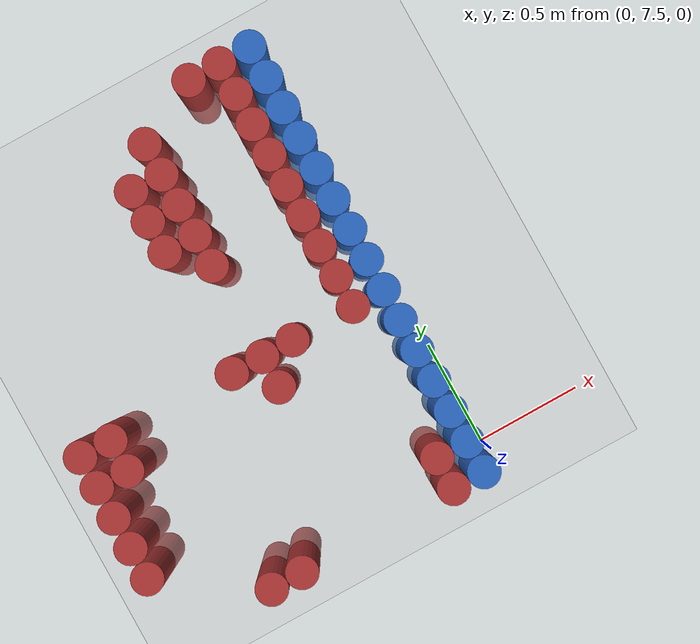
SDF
<sdf version="1.6">
 <world name="default">
  <model name="ground_plane">
   <static>1</static>
   <link name="link">
    <collision name="collision">
     <geometry><plane><normal>0 0 1</normal><size>100 100</size></plane></geometry>
     <surface><friction><ode><mu>100</mu><mu2>50</mu2></ode></friction></surface>
    </collision>
    <visual name="visual">
     <cast_shadows>0</cast_shadows>
     <geometry><plane><normal>0 0 1</normal><size>100 100</size></plane></geometry>
     <material>
      <script><uri>file://media/materials/scripts/gazebo.material</uri><name>Gazebo/Grey</name></script>
     </material>
    </visual>
   </link>
  </model>
  <model name="unit_cylinder_219">
   <static>1</static>
   <pose>-1.575000 7.725000 0.000000 0.000000 0.000000 0.000000</pose>
   <link name="link">
    <inertial>
     <mass>1</mass>
     <inertia><ixx>0.145833</ixx><ixy>0</ixy><ixz>0</ixz><iyy>0.145833</iyy><iyz>0</iyz><izz>0.125</izz></inertia>
    </inertial>
    <collision name="collision">
     <geometry><cylinder><radius>0.075000</radius><length>1</length></cylinder></geometry>
    </collision>
    <visual name="visual">
     <geometry><cylinder><radius>0.075000</radius><length>1</length></cylinder></geometry>
     <material>
      <ambient>0.648000 0.192000 0.192000 1</ambient>
      <diffuse>0.648000 0.192000 0.192000 1</diffuse>
     </material>
     <material>
      <script><name>Gazebo/Grey</name><uri>file://media/materials/scripts/gazebo.material</uri></script>
     </material>
    </visual>
   </link>
  </model>
  <model name="unit_cylinder_220">
   <static>1</static>
   <pose>-1.575000 7.875000 0.000000 0.000000 0.000000 0.000000</pose>
   <link name="link">
    <inertial>
     <mass>1</mass>
     <inertia><ixx>0.145833</ixx><ixy>0</ixy><ixz>0</ixz><iyy>0.145833</iyy><iyz>0</iyz><izz>0.125</izz></inertia>
    </inertial>
    <collision name="collision">
     <geometry><cylinder><radius>0.075000</radius><length>1</length></cylinder></geometry>
    </collision>
    <visual name="visual">
     <geometry><cylinder><radius>0.075000</radius><length>1</length></cylinder></geometry>
     <material>
      <ambient>0.648000 0.192000 0.192000 1</ambient>
      <diffuse>0.648000 0.192000 0.192000 1</diffuse>
     </material>
     <material>
      <script><name>Gazebo/Grey</name><uri>file://media/materials/scripts/gazebo.material</uri></script>
     </material>
    </visual>
   </link>
  </model>
  <model name="unit_cylinder_221">
   <static>1</static>
   <pose>-1.575000 8.025000 0.000000 0.000000 0.000000 0.000000</pose>
   <link name="link">
    <inertial>
     <mass>1</mass>
     <inertia><ixx>0.145833</ixx><ixy>0</ixy><ixz>0</ixz><iyy>0.145833</iyy><iyz>0</iyz><izz>0.125</izz></inertia>
    </inertial>
    <collision name="collision">
     <geometry><cylinder><radius>0.075000</radius><length>1</length></cylinder></geometry>
    </collision>
    <visual name="visual">
     <geometry><cylinder><radius>0.075000</radius><length>1</length></cylinder></geometry>
     <material>
      <ambient>0.648000 0.192000 0.192000 1</ambient>
      <diffuse>0.648000 0.192000 0.192000 1</diffuse>
     </material>
     <material>
      <script><name>Gazebo/Grey</name><uri>file://media/materials/scripts/gazebo.material</uri></script>
     </material>
    </visual>
   </link>
  </model>
  <model name="unit_cylinder_222">
   <static>1</static>
   <pose>-1.575000 8.175000 0.000000 0.000000 0.000000 0.000000</pose>
   <link name="link">
    <inertial>
     <mass>1</mass>
     <inertia><ixx>0.145833</ixx><ixy>0</ixy><ixz>0</ixz><iyy>0.145833</iyy><iyz>0</iyz><izz>0.125</izz></inertia>
    </inertial>
    <collision name="collision">
     <geometry><cylinder><radius>0.075000</radius><length>1</length></cylinder></geometry>
    </collision>
    <visual name="visual">
     <geometry><cylinder><radius>0.075000</radius><length>1</length></cylinder></geometry>
     <material>
      <ambient>0.648000 0.192000 0.192000 1</ambient>
      <diffuse>0.648000 0.192000 0.192000 1</diffuse>
     </material>
     <material>
      <script><name>Gazebo/Grey</name><uri>file://media/materials/scripts/gazebo.material</uri></script>
     </material>
    </visual>
   </link>
  </model>
  <model name="unit_cylinder_223">
   <static>1</static>
   <pose>-1.575000 8.325000 0.000000 0.000000 0.000000 0.000000</pose>
   <link name="link">
    <inertial>
     <mass>1</mass>
     <inertia><ixx>0.145833</ixx><ixy>0</ixy><ixz>0</ixz><iyy>0.145833</iyy><iyz>0</iyz><izz>0.125</izz></inertia>
    </inertial>
    <collision name="collision">
     <geometry><cylinder><radius>0.075000</radius><length>1</length></cylinder></geometry>
    </collision>
    <visual name="visual">
     <geometry><cylinder><radius>0.075000</radius><length>1</length></cylinder></geometry>
     <material>
      <ambient>0.648000 0.192000 0.192000 1</ambient>
      <diffuse>0.648000 0.192000 0.192000 1</diffuse>
     </material>
     <material>
      <script><name>Gazebo/Grey</name><uri>file://media/materials/scripts/gazebo.material</uri></script>
     </material>
    </visual>
   </link>
  </model>
  <model name="unit_cylinder_228">
   <static>1</static>
   <pose>-1.425000 8.175000 0.000000 0.000000 0.000000 0.000000</pose>
   <link name="link">
    <inertial>
     <mass>1</mass>
     <inertia><ixx>0.145833</ixx><ixy>0</ixy><ixz>0</ixz><iyy>0.145833</iyy><iyz>0</iyz><izz>0.125</izz></inertia>
    </inertial>
    <collision name="collision">
     <geometry><cylinder><radius>0.075000</radius><length>1</length></cylinder></geometry>
    </collision>
    <visual name="visual">
     <geometry><cylinder><radius>0.075000</radius><length>1</length></cylinder></geometry>
     <material>
      <ambient>0.648000 0.192000 0.192000 1</ambient>
      <diffuse>0.648000 0.192000 0.192000 1</diffuse>
     </material>
     <material>
      <script><name>Gazebo/Grey</name><uri>file://media/materials/scripts/gazebo.material</uri></script>
     </material>
    </visual>
   </link>
  </model>
  <model name="unit_cylinder_229">
   <static>1</static>
   <pose>-1.425000 8.325000 0.000000 0.000000 0.000000 0.000000</pose>
   <link name="link">
    <inertial>
     <mass>1</mass>
     <inertia><ixx>0.145833</ixx><ixy>0</ixy><ixz>0</ixz><iyy>0.145833</iyy><iyz>0</iyz><izz>0.125</izz></inertia>
    </inertial>
    <collision name="collision">
     <geometry><cylinder><radius>0.075000</radius><length>1</length></cylinder></geometry>
    </collision>
    <visual name="visual">
     <geometry><cylinder><radius>0.075000</radius><length>1</length></cylinder></geometry>
     <material>
      <ambient>0.648000 0.192000 0.192000 1</ambient>
      <diffuse>0.648000 0.192000 0.192000 1</diffuse>
     </material>
     <material>
      <script><name>Gazebo/Grey</name><uri>file://media/materials/scripts/gazebo.material</uri></script>
     </material>
    </visual>
   </link>
  </model>
  <model name="unit_cylinder_241">
   <static>1</static>
   <pose>-1.125000 7.425000 0.000000 0.000000 0.000000 0.000000</pose>
   <link name="link">
    <inertial>
     <mass>1</mass>
     <inertia><ixx>0.145833</ixx><ixy>0</ixy><ixz>0</ixz><iyy>0.145833</iyy><iyz>0</iyz><izz>0.125</izz></inertia>
    </inertial>
    <collision name="collision">
     <geometry><cylinder><radius>0.075000</radius><length>1</length></cylinder></geometry>
    </collision>
    <visual name="visual">
     <geometry><cylinder><radius>0.075000</radius><length>1</length></cylinder></geometry>
     <material>
      <ambient>0.648000 0.192000 0.192000 1</ambient>
      <diffuse>0.648000 0.192000 0.192000 1</diffuse>
     </material>
     <material>
      <script><name>Gazebo/Grey</name><uri>file://media/materials/scripts/gazebo.material</uri></script>
     </material>
    </visual>
   </link>
  </model>
  <model name="unit_cylinder_252">
   <static>1</static>
   <pose>-0.975000 7.425000 0.000000 0.000000 0.000000 0.000000</pose>
   <link name="link">
    <inertial>
     <mass>1</mass>
     <inertia><ixx>0.145833</ixx><ixy>0</ixy><ixz>0</ixz><iyy>0.145833</iyy><iyz>0</iyz><izz>0.125</izz></inertia>
    </inertial>
    <collision name="collision">
     <geometry><cylinder><radius>0.075000</radius><length>1</length></cylinder></geometry>
    </collision>
    <visual name="visual">
     <geometry><cylinder><radius>0.075000</radius><length>1</length></cylinder></geometry>
     <material>
      <ambient>0.648000 0.192000 0.192000 1</ambient>
      <diffuse>0.648000 0.192000 0.192000 1</diffuse>
     </material>
     <material>
      <script><name>Gazebo/Grey</name><uri>file://media/materials/scripts/gazebo.material</uri></script>
     </material>
    </visual>
   </link>
  </model>
  <model name="unit_cylinder_258">
   <static>1</static>
   <pose>-0.825000 8.325000 0.000000 0.000000 0.000000 0.000000</pose>
   <link name="link">
    <inertial>
     <mass>1</mass>
     <inertia><ixx>0.145833</ixx><ixy>0</ixy><ixz>0</ixz><iyy>0.145833</iyy><iyz>0</iyz><izz>0.125</izz></inertia>
    </inertial>
    <collision name="collision">
     <geometry><cylinder><radius>0.075000</radius><length>1</length></cylinder></geometry>
    </collision>
    <visual name="visual">
     <geometry><cylinder><radius>0.075000</radius><length>1</length></cylinder></geometry>
     <material>
      <ambient>0.648000 0.192000 0.192000 1</ambient>
      <diffuse>0.648000 0.192000 0.192000 1</diffuse>
     </material>
     <material>
      <script><name>Gazebo/Grey</name><uri>file://media/materials/scripts/gazebo.material</uri></script>
     </material>
    </visual>
   </link>
  </model>
  <model name="unit_cylinder_259">
   <static>1</static>
   <pose>-0.825000 8.925000 0.000000 0.000000 0.000000 0.000000</pose>
   <link name="link">
    <inertial>
     <mass>1</mass>
     <inertia><ixx>0.145833</ixx><ixy>0</ixy><ixz>0</ixz><iyy>0.145833</iyy><iyz>0</iyz><izz>0.125</izz></inertia>
    </inertial>
    <collision name="collision">
     <geometry><cylinder><radius>0.075000</radius><length>1</length></cylinder></geometry>
    </collision>
    <visual name="visual">
     <geometry><cylinder><radius>0.075000</radius><length>1</length></cylinder></geometry>
     <material>
      <ambient>0.648000 0.192000 0.192000 1</ambient>
      <diffuse>0.648000 0.192000 0.192000 1</diffuse>
     </material>
     <material>
      <script><name>Gazebo/Grey</name><uri>file://media/materials/scripts/gazebo.material</uri></script>
     </material>
    </visual>
   </link>
  </model>
  <model name="unit_cylinder_260">
   <static>1</static>
   <pose>-0.825000 9.075000 0.000000 0.000000 0.000000 0.000000</pose>
   <link name="link">
    <inertial>
     <mass>1</mass>
     <inertia><ixx>0.145833</ixx><ixy>0</ixy><ixz>0</ixz><iyy>0.145833</iyy><iyz>0</iyz><izz>0.125</izz></inertia>
    </inertial>
    <collision name="collision">
     <geometry><cylinder><radius>0.075000</radius><length>1</length></cylinder></geometry>
    </collision>
    <visual name="visual">
     <geometry><cylinder><radius>0.075000</radius><length>1</length></cylinder></geometry>
     <material>
      <ambient>0.648000 0.192000 0.192000 1</ambient>
      <diffuse>0.648000 0.192000 0.192000 1</diffuse>
     </material>
     <material>
      <script><name>Gazebo/Grey</name><uri>file://media/materials/scripts/gazebo.material</uri></script>
     </material>
    </visual>
   </link>
  </model>
  <model name="unit_cylinder_261">
   <static>1</static>
   <pose>-0.825000 9.225000 0.000000 0.000000 0.000000 0.000000</pose>
   <link name="link">
    <inertial>
     <mass>1</mass>
     <inertia><ixx>0.145833</ixx><ixy>0</ixy><ixz>0</ixz><iyy>0.145833</iyy><iyz>0</iyz><izz>0.125</izz></inertia>
    </inertial>
    <collision name="collision">
     <geometry><cylinder><radius>0.075000</radius><length>1</length></cylinder></geometry>
    </collision>
    <visual name="visual">
     <geometry><cylinder><radius>0.075000</radius><length>1</length></cylinder></geometry>
     <material>
      <ambient>0.648000 0.192000 0.192000 1</ambient>
      <diffuse>0.648000 0.192000 0.192000 1</diffuse>
     </material>
     <material>
      <script><name>Gazebo/Grey</name><uri>file://media/materials/scripts/gazebo.material</uri></script>
     </material>
    </visual>
   </link>
  </model>
  <model name="unit_cylinder_265">
   <static>1</static>
   <pose>-0.675000 8.175000 0.000000 0.000000 0.000000 0.000000</pose>
   <link name="link">
    <inertial>
     <mass>1</mass>
     <inertia><ixx>0.145833</ixx><ixy>0</ixy><ixz>0</ixz><iyy>0.145833</iyy><iyz>0</iyz><izz>0.125</izz></inertia>
    </inertial>
    <collision name="collision">
     <geometry><cylinder><radius>0.075000</radius><length>1</length></cylinder></geometry>
    </collision>
    <visual name="visual">
     <geometry><cylinder><radius>0.075000</radius><length>1</length></cylinder></geometry>
     <material>
      <ambient>0.648000 0.192000 0.192000 1</ambient>
      <diffuse>0.648000 0.192000 0.192000 1</diffuse>
     </material>
     <material>
      <script><name>Gazebo/Grey</name><uri>file://media/materials/scripts/gazebo.material</uri></script>
     </material>
    </visual>
   </link>
  </model>
  <model name="unit_cylinder_266">
   <static>1</static>
   <pose>-0.675000 8.325000 0.000000 0.000000 0.000000 0.000000</pose>
   <link name="link">
    <inertial>
     <mass>1</mass>
     <inertia><ixx>0.145833</ixx><ixy>0</ixy><ixz>0</ixz><iyy>0.145833</iyy><iyz>0</iyz><izz>0.125</izz></inertia>
    </inertial>
    <collision name="collision">
     <geometry><cylinder><radius>0.075000</radius><length>1</length></cylinder></geometry>
    </collision>
    <visual name="visual">
     <geometry><cylinder><radius>0.075000</radius><length>1</length></cylinder></geometry>
     <material>
      <ambient>0.648000 0.192000 0.192000 1</ambient>
      <diffuse>0.648000 0.192000 0.192000 1</diffuse>
     </material>
     <material>
      <script><name>Gazebo/Grey</name><uri>file://media/materials/scripts/gazebo.material</uri></script>
     </material>
    </visual>
   </link>
  </model>
  <model name="unit_cylinder_267">
   <static>1</static>
   <pose>-0.675000 8.775000 0.000000 0.000000 0.000000 0.000000</pose>
   <link name="link">
    <inertial>
     <mass>1</mass>
     <inertia><ixx>0.145833</ixx><ixy>0</ixy><ixz>0</ixz><iyy>0.145833</iyy><iyz>0</iyz><izz>0.125</izz></inertia>
    </inertial>
    <collision name="collision">
     <geometry><cylinder><radius>0.075000</radius><length>1</length></cylinder></geometry>
    </collision>
    <visual name="visual">
     <geometry><cylinder><radius>0.075000</radius><length>1</length></cylinder></geometry>
     <material>
      <ambient>0.648000 0.192000 0.192000 1</ambient>
      <diffuse>0.648000 0.192000 0.192000 1</diffuse>
     </material>
     <material>
      <script><name>Gazebo/Grey</name><uri>file://media/materials/scripts/gazebo.material</uri></script>
     </material>
    </visual>
   </link>
  </model>
  <model name="unit_cylinder_268">
   <static>1</static>
   <pose>-0.675000 8.925000 0.000000 0.000000 0.000000 0.000000</pose>
   <link name="link">
    <inertial>
     <mass>1</mass>
     <inertia><ixx>0.145833</ixx><ixy>0</ixy><ixz>0</ixz><iyy>0.145833</iyy><iyz>0</iyz><izz>0.125</izz></inertia>
    </inertial>
    <collision name="collision">
     <geometry><cylinder><radius>0.075000</radius><length>1</length></cylinder></geometry>
    </collision>
    <visual name="visual">
     <geometry><cylinder><radius>0.075000</radius><length>1</length></cylinder></geometry>
     <material>
      <ambient>0.648000 0.192000 0.192000 1</ambient>
      <diffuse>0.648000 0.192000 0.192000 1</diffuse>
     </material>
     <material>
      <script><name>Gazebo/Grey</name><uri>file://media/materials/scripts/gazebo.material</uri></script>
     </material>
    </visual>
   </link>
  </model>
  <model name="unit_cylinder_269">
   <static>1</static>
   <pose>-0.675000 9.075000 0.000000 0.000000 0.000000 0.000000</pose>
   <link name="link">
    <inertial>
     <mass>1</mass>
     <inertia><ixx>0.145833</ixx><ixy>0</ixy><ixz>0</ixz><iyy>0.145833</iyy><iyz>0</iyz><izz>0.125</izz></inertia>
    </inertial>
    <collision name="collision">
     <geometry><cylinder><radius>0.075000</radius><length>1</length></cylinder></geometry>
    </collision>
    <visual name="visual">
     <geometry><cylinder><radius>0.075000</radius><length>1</length></cylinder></geometry>
     <material>
      <ambient>0.648000 0.192000 0.192000 1</ambient>
      <diffuse>0.648000 0.192000 0.192000 1</diffuse>
     </material>
     <material>
      <script><name>Gazebo/Grey</name><uri>file://media/materials/scripts/gazebo.material</uri></script>
     </material>
    </visual>
   </link>
  </model>
  <model name="unit_cylinder_270">
   <static>1</static>
   <pose>-0.675000 9.225000 0.000000 0.000000 0.000000 0.000000</pose>
   <link name="link">
    <inertial>
     <mass>1</mass>
     <inertia><ixx>0.145833</ixx><ixy>0</ixy><ixz>0</ixz><iyy>0.145833</iyy><iyz>0</iyz><izz>0.125</izz></inertia>
    </inertial>
    <collision name="collision">
     <geometry><cylinder><radius>0.075000</radius><length>1</length></cylinder></geometry>
    </collision>
    <visual name="visual">
     <geometry><cylinder><radius>0.075000</radius><length>1</length></cylinder></geometry>
     <material>
      <ambient>0.648000 0.192000 0.192000 1</ambient>
      <diffuse>0.648000 0.192000 0.192000 1</diffuse>
     </material>
     <material>
      <script><name>Gazebo/Grey</name><uri>file://media/materials/scripts/gazebo.material</uri></script>
     </material>
    </visual>
   </link>
  </model>
  <model name="unit_cylinder_271">
   <static>1</static>
   <pose>-0.675000 9.375000 0.000000 0.000000 0.000000 0.000000</pose>
   <link name="link">
    <inertial>
     <mass>1</mass>
     <inertia><ixx>0.145833</ixx><ixy>0</ixy><ixz>0</ixz><iyy>0.145833</iyy><iyz>0</iyz><izz>0.125</izz></inertia>
    </inertial>
    <collision name="collision">
     <geometry><cylinder><radius>0.075000</radius><length>1</length></cylinder></geometry>
    </collision>
    <visual name="visual">
     <geometry><cylinder><radius>0.075000</radius><length>1</length></cylinder></geometry>
     <material>
      <ambient>0.648000 0.192000 0.192000 1</ambient>
      <diffuse>0.648000 0.192000 0.192000 1</diffuse>
     </material>
     <material>
      <script><name>Gazebo/Grey</name><uri>file://media/materials/scripts/gazebo.material</uri></script>
     </material>
    </visual>
   </link>
  </model>
  <model name="unit_cylinder_278">
   <static>1</static>
   <pose>-0.525000 8.325000 0.000000 0.000000 0.000000 0.000000</pose>
   <link name="link">
    <inertial>
     <mass>1</mass>
     <inertia><ixx>0.145833</ixx><ixy>0</ixy><ixz>0</ixz><iyy>0.145833</iyy><iyz>0</iyz><izz>0.125</izz></inertia>
    </inertial>
    <collision name="collision">
     <geometry><cylinder><radius>0.075000</radius><length>1</length></cylinder></geometry>
    </collision>
    <visual name="visual">
     <geometry><cylinder><radius>0.075000</radius><length>1</length></cylinder></geometry>
     <material>
      <ambient>0.648000 0.192000 0.192000 1</ambient>
      <diffuse>0.648000 0.192000 0.192000 1</diffuse>
     </material>
     <material>
      <script><name>Gazebo/Grey</name><uri>file://media/materials/scripts/gazebo.material</uri></script>
     </material>
    </visual>
   </link>
  </model>
  <model name="unit_cylinder_291">
   <static>1</static>
   <pose>-0.375000 9.525000 0.000000 0.000000 0.000000 0.000000</pose>
   <link name="link">
    <inertial>
     <mass>1</mass>
     <inertia><ixx>0.145833</ixx><ixy>0</ixy><ixz>0</ixz><iyy>0.145833</iyy><iyz>0</iyz><izz>0.125</izz></inertia>
    </inertial>
    <collision name="collision">
     <geometry><cylinder><radius>0.075000</radius><length>1</length></cylinder></geometry>
    </collision>
    <visual name="visual">
     <geometry><cylinder><radius>0.075000</radius><length>1</length></cylinder></geometry>
     <material>
      <ambient>0.648000 0.192000 0.192000 1</ambient>
      <diffuse>0.648000 0.192000 0.192000 1</diffuse>
     </material>
     <material>
      <script><name>Gazebo/Grey</name><uri>file://media/materials/scripts/gazebo.material</uri></script>
     </material>
    </visual>
   </link>
  </model>
  <model name="unit_cylinder_295">
   <static>1</static>
   <pose>-0.225000 7.425000 0.000000 0.000000 0.000000 0.000000</pose>
   <link name="link">
    <inertial>
     <mass>1</mass>
     <inertia><ixx>0.145833</ixx><ixy>0</ixy><ixz>0</ixz><iyy>0.145833</iyy><iyz>0</iyz><izz>0.125</izz></inertia>
    </inertial>
    <collision name="collision">
     <geometry><cylinder><radius>0.075000</radius><length>1</length></cylinder></geometry>
    </collision>
    <visual name="visual">
     <geometry><cylinder><radius>0.075000</radius><length>1</length></cylinder></geometry>
     <material>
      <ambient>0.648000 0.192000 0.192000 1</ambient>
      <diffuse>0.648000 0.192000 0.192000 1</diffuse>
     </material>
     <material>
      <script><name>Gazebo/Grey</name><uri>file://media/materials/scripts/gazebo.material</uri></script>
     </material>
    </visual>
   </link>
  </model>
  <model name="unit_cylinder_296">
   <static>1</static>
   <pose>-0.225000 7.575000 0.000000 0.000000 0.000000 0.000000</pose>
   <link name="link">
    <inertial>
     <mass>1</mass>
     <inertia><ixx>0.145833</ixx><ixy>0</ixy><ixz>0</ixz><iyy>0.145833</iyy><iyz>0</iyz><izz>0.125</izz></inertia>
    </inertial>
    <collision name="collision">
     <geometry><cylinder><radius>0.075000</radius><length>1</length></cylinder></geometry>
    </collision>
    <visual name="visual">
     <geometry><cylinder><radius>0.075000</radius><length>1</length></cylinder></geometry>
     <material>
      <ambient>0.648000 0.192000 0.192000 1</ambient>
      <diffuse>0.648000 0.192000 0.192000 1</diffuse>
     </material>
     <material>
      <script><name>Gazebo/Grey</name><uri>file://media/materials/scripts/gazebo.material</uri></script>
     </material>
    </visual>
   </link>
  </model>
  <model name="unit_cylinder_297">
   <static>1</static>
   <pose>-0.225000 8.325000 0.000000 0.000000 0.000000 0.000000</pose>
   <link name="link">
    <inertial>
     <mass>1</mass>
     <inertia><ixx>0.145833</ixx><ixy>0</ixy><ixz>0</ixz><iyy>0.145833</iyy><iyz>0</iyz><izz>0.125</izz></inertia>
    </inertial>
    <collision name="collision">
     <geometry><cylinder><radius>0.075000</radius><length>1</length></cylinder></geometry>
    </collision>
    <visual name="visual">
     <geometry><cylinder><radius>0.075000</radius><length>1</length></cylinder></geometry>
     <material>
      <ambient>0.648000 0.192000 0.192000 1</ambient>
      <diffuse>0.648000 0.192000 0.192000 1</diffuse>
     </material>
     <material>
      <script><name>Gazebo/Grey</name><uri>file://media/materials/scripts/gazebo.material</uri></script>
     </material>
    </visual>
   </link>
  </model>
  <model name="unit_cylinder_298">
   <static>1</static>
   <pose>-0.225000 8.475000 0.000000 0.000000 0.000000 0.000000</pose>
   <link name="link">
    <inertial>
     <mass>1</mass>
     <inertia><ixx>0.145833</ixx><ixy>0</ixy><ixz>0</ixz><iyy>0.145833</iyy><iyz>0</iyz><izz>0.125</izz></inertia>
    </inertial>
    <collision name="collision">
     <geometry><cylinder><radius>0.075000</radius><length>1</length></cylinder></geometry>
    </collision>
    <visual name="visual">
     <geometry><cylinder><radius>0.075000</radius><length>1</length></cylinder></geometry>
     <material>
      <ambient>0.648000 0.192000 0.192000 1</ambient>
      <diffuse>0.648000 0.192000 0.192000 1</diffuse>
     </material>
     <material>
      <script><name>Gazebo/Grey</name><uri>file://media/materials/scripts/gazebo.material</uri></script>
     </material>
    </visual>
   </link>
  </model>
  <model name="unit_cylinder_299">
   <static>1</static>
   <pose>-0.225000 8.625000 0.000000 0.000000 0.000000 0.000000</pose>
   <link name="link">
    <inertial>
     <mass>1</mass>
     <inertia><ixx>0.145833</ixx><ixy>0</ixy><ixz>0</ixz><iyy>0.145833</iyy><iyz>0</iyz><izz>0.125</izz></inertia>
    </inertial>
    <collision name="collision">
     <geometry><cylinder><radius>0.075000</radius><length>1</length></cylinder></geometry>
    </collision>
    <visual name="visual">
     <geometry><cylinder><radius>0.075000</radius><length>1</length></cylinder></geometry>
     <material>
      <ambient>0.648000 0.192000 0.192000 1</ambient>
      <diffuse>0.648000 0.192000 0.192000 1</diffuse>
     </material>
     <material>
      <script><name>Gazebo/Grey</name><uri>file://media/materials/scripts/gazebo.material</uri></script>
     </material>
    </visual>
   </link>
  </model>
  <model name="unit_cylinder_300">
   <static>1</static>
   <pose>-0.225000 8.775000 0.000000 0.000000 0.000000 0.000000</pose>
   <link name="link">
    <inertial>
     <mass>1</mass>
     <inertia><ixx>0.145833</ixx><ixy>0</ixy><ixz>0</ixz><iyy>0.145833</iyy><iyz>0</iyz><izz>0.125</izz></inertia>
    </inertial>
    <collision name="collision">
     <geometry><cylinder><radius>0.075000</radius><length>1</length></cylinder></geometry>
    </collision>
    <visual name="visual">
     <geometry><cylinder><radius>0.075000</radius><length>1</length></cylinder></geometry>
     <material>
      <ambient>0.648000 0.192000 0.192000 1</ambient>
      <diffuse>0.648000 0.192000 0.192000 1</diffuse>
     </material>
     <material>
      <script><name>Gazebo/Grey</name><uri>file://media/materials/scripts/gazebo.material</uri></script>
     </material>
    </visual>
   </link>
  </model>
  <model name="unit_cylinder_301">
   <static>1</static>
   <pose>-0.225000 8.925000 0.000000 0.000000 0.000000 0.000000</pose>
   <link name="link">
    <inertial>
     <mass>1</mass>
     <inertia><ixx>0.145833</ixx><ixy>0</ixy><ixz>0</ixz><iyy>0.145833</iyy><iyz>0</iyz><izz>0.125</izz></inertia>
    </inertial>
    <collision name="collision">
     <geometry><cylinder><radius>0.075000</radius><length>1</length></cylinder></geometry>
    </collision>
    <visual name="visual">
     <geometry><cylinder><radius>0.075000</radius><length>1</length></cylinder></geometry>
     <material>
      <ambient>0.648000 0.192000 0.192000 1</ambient>
      <diffuse>0.648000 0.192000 0.192000 1</diffuse>
     </material>
     <material>
      <script><name>Gazebo/Grey</name><uri>file://media/materials/scripts/gazebo.material</uri></script>
     </material>
    </visual>
   </link>
  </model>
  <model name="unit_cylinder_302">
   <static>1</static>
   <pose>-0.225000 9.075000 0.000000 0.000000 0.000000 0.000000</pose>
   <link name="link">
    <inertial>
     <mass>1</mass>
     <inertia><ixx>0.145833</ixx><ixy>0</ixy><ixz>0</ixz><iyy>0.145833</iyy><iyz>0</iyz><izz>0.125</izz></inertia>
    </inertial>
    <collision name="collision">
     <geometry><cylinder><radius>0.075000</radius><length>1</length></cylinder></geometry>
    </collision>
    <visual name="visual">
     <geometry><cylinder><radius>0.075000</radius><length>1</length></cylinder></geometry>
     <material>
      <ambient>0.648000 0.192000 0.192000 1</ambient>
      <diffuse>0.648000 0.192000 0.192000 1</diffuse>
     </material>
     <material>
      <script><name>Gazebo/Grey</name><uri>file://media/materials/scripts/gazebo.material</uri></script>
     </material>
    </visual>
   </link>
  </model>
  <model name="unit_cylinder_303">
   <static>1</static>
   <pose>-0.225000 9.225000 0.000000 0.000000 0.000000 0.000000</pose>
   <link name="link">
    <inertial>
     <mass>1</mass>
     <inertia><ixx>0.145833</ixx><ixy>0</ixy><ixz>0</ixz><iyy>0.145833</iyy><iyz>0</iyz><izz>0.125</izz></inertia>
    </inertial>
    <collision name="collision">
     <geometry><cylinder><radius>0.075000</radius><length>1</length></cylinder></geometry>
    </collision>
    <visual name="visual">
     <geometry><cylinder><radius>0.075000</radius><length>1</length></cylinder></geometry>
     <material>
      <ambient>0.648000 0.192000 0.192000 1</ambient>
      <diffuse>0.648000 0.192000 0.192000 1</diffuse>
     </material>
     <material>
      <script><name>Gazebo/Grey</name><uri>file://media/materials/scripts/gazebo.material</uri></script>
     </material>
    </visual>
   </link>
  </model>
  <model name="unit_cylinder_304">
   <static>1</static>
   <pose>-0.225000 9.375000 0.000000 0.000000 0.000000 0.000000</pose>
   <link name="link">
    <inertial>
     <mass>1</mass>
     <inertia><ixx>0.145833</ixx><ixy>0</ixy><ixz>0</ixz><iyy>0.145833</iyy><iyz>0</iyz><izz>0.125</izz></inertia>
    </inertial>
    <collision name="collision">
     <geometry><cylinder><radius>0.075000</radius><length>1</length></cylinder></geometry>
    </collision>
    <visual name="visual">
     <geometry><cylinder><radius>0.075000</radius><length>1</length></cylinder></geometry>
     <material>
      <ambient>0.648000 0.192000 0.192000 1</ambient>
      <diffuse>0.648000 0.192000 0.192000 1</diffuse>
     </material>
     <material>
      <script><name>Gazebo/Grey</name><uri>file://media/materials/scripts/gazebo.material</uri></script>
     </material>
    </visual>
   </link>
  </model>
  <model name="unit_cylinder_305">
   <static>1</static>
   <pose>-0.225000 9.525000 0.000000 0.000000 0.000000 0.000000</pose>
   <link name="link">
    <inertial>
     <mass>1</mass>
     <inertia><ixx>0.145833</ixx><ixy>0</ixy><ixz>0</ixz><iyy>0.145833</iyy><iyz>0</iyz><izz>0.125</izz></inertia>
    </inertial>
    <collision name="collision">
     <geometry><cylinder><radius>0.075000</radius><length>1</length></cylinder></geometry>
    </collision>
    <visual name="visual">
     <geometry><cylinder><radius>0.075000</radius><length>1</length></cylinder></geometry>
     <material>
      <ambient>0.648000 0.192000 0.192000 1</ambient>
      <diffuse>0.648000 0.192000 0.192000 1</diffuse>
     </material>
     <material>
      <script><name>Gazebo/Grey</name><uri>file://media/materials/scripts/gazebo.material</uri></script>
     </material>
    </visual>
   </link>
  </model>
  <model name="unit_cylinder_321">
   <static>1</static>
   <pose>-0.075000 7.425000 0.000000 0.000000 0.000000 0.000000</pose>
   <link name="link">
    <inertial>
     <mass>1</mass>
     <inertia><ixx>0.145833</ixx><ixy>0</ixy><ixz>0</ixz><iyy>0.145833</iyy><iyz>0</iyz><izz>0.125</izz></inertia>
    </inertial>
    <collision name="collision">
     <geometry><cylinder><radius>0.075000</radius><length>1</length></cylinder></geometry>
    </collision>
    <visual name="visual">
     <geometry><cylinder><radius>0.075000</radius><length>1</length></cylinder></geometry>
     <material>
      <ambient>0.152000 0.379000 0.720000 1</ambient>
      <diffuse>0.152000 0.379000 0.720000 1</diffuse>
     </material>
     <material>
      <script><name>Gazebo/Grey</name><uri>file://media/materials/scripts/gazebo.material</uri></script>
     </material>
    </visual>
   </link>
  </model>
  <model name="unit_cylinder_322">
   <static>1</static>
   <pose>-0.075000 7.575000 0.000000 0.000000 0.000000 0.000000</pose>
   <link name="link">
    <inertial>
     <mass>1</mass>
     <inertia><ixx>0.145833</ixx><ixy>0</ixy><ixz>0</ixz><iyy>0.145833</iyy><iyz>0</iyz><izz>0.125</izz></inertia>
    </inertial>
    <collision name="collision">
     <geometry><cylinder><radius>0.075000</radius><length>1</length></cylinder></geometry>
    </collision>
    <visual name="visual">
     <geometry><cylinder><radius>0.075000</radius><length>1</length></cylinder></geometry>
     <material>
      <ambient>0.152000 0.379000 0.720000 1</ambient>
      <diffuse>0.152000 0.379000 0.720000 1</diffuse>
     </material>
     <material>
      <script><name>Gazebo/Grey</name><uri>file://media/materials/scripts/gazebo.material</uri></script>
     </material>
    </visual>
   </link>
  </model>
  <model name="unit_cylinder_323">
   <static>1</static>
   <pose>-0.075000 7.725000 0.000000 0.000000 0.000000 0.000000</pose>
   <link name="link">
    <inertial>
     <mass>1</mass>
     <inertia><ixx>0.145833</ixx><ixy>0</ixy><ixz>0</ixz><iyy>0.145833</iyy><iyz>0</iyz><izz>0.125</izz></inertia>
    </inertial>
    <collision name="collision">
     <geometry><cylinder><radius>0.075000</radius><length>1</length></cylinder></geometry>
    </collision>
    <visual name="visual">
     <geometry><cylinder><radius>0.075000</radius><length>1</length></cylinder></geometry>
     <material>
      <ambient>0.152000 0.379000 0.720000 1</ambient>
      <diffuse>0.152000 0.379000 0.720000 1</diffuse>
     </material>
     <material>
      <script><name>Gazebo/Grey</name><uri>file://media/materials/scripts/gazebo.material</uri></script>
     </material>
    </visual>
   </link>
  </model>
  <model name="unit_cylinder_324">
   <static>1</static>
   <pose>-0.075000 7.875000 0.000000 0.000000 0.000000 0.000000</pose>
   <link name="link">
    <inertial>
     <mass>1</mass>
     <inertia><ixx>0.145833</ixx><ixy>0</ixy><ixz>0</ixz><iyy>0.145833</iyy><iyz>0</iyz><izz>0.125</izz></inertia>
    </inertial>
    <collision name="collision">
     <geometry><cylinder><radius>0.075000</radius><length>1</length></cylinder></geometry>
    </collision>
    <visual name="visual">
     <geometry><cylinder><radius>0.075000</radius><length>1</length></cylinder></geometry>
     <material>
      <ambient>0.152000 0.379000 0.720000 1</ambient>
      <diffuse>0.152000 0.379000 0.720000 1</diffuse>
     </material>
     <material>
      <script><name>Gazebo/Grey</name><uri>file://media/materials/scripts/gazebo.material</uri></script>
     </material>
    </visual>
   </link>
  </model>
  <model name="unit_cylinder_325">
   <static>1</static>
   <pose>-0.075000 8.025000 0.000000 0.000000 0.000000 0.000000</pose>
   <link name="link">
    <inertial>
     <mass>1</mass>
     <inertia><ixx>0.145833</ixx><ixy>0</ixy><ixz>0</ixz><iyy>0.145833</iyy><iyz>0</iyz><izz>0.125</izz></inertia>
    </inertial>
    <collision name="collision">
     <geometry><cylinder><radius>0.075000</radius><length>1</length></cylinder></geometry>
    </collision>
    <visual name="visual">
     <geometry><cylinder><radius>0.075000</radius><length>1</length></cylinder></geometry>
     <material>
      <ambient>0.152000 0.379000 0.720000 1</ambient>
      <diffuse>0.152000 0.379000 0.720000 1</diffuse>
     </material>
     <material>
      <script><name>Gazebo/Grey</name><uri>file://media/materials/scripts/gazebo.material</uri></script>
     </material>
    </visual>
   </link>
  </model>
  <model name="unit_cylinder_326">
   <static>1</static>
   <pose>-0.075000 8.175000 0.000000 0.000000 0.000000 0.000000</pose>
   <link name="link">
    <inertial>
     <mass>1</mass>
     <inertia><ixx>0.145833</ixx><ixy>0</ixy><ixz>0</ixz><iyy>0.145833</iyy><iyz>0</iyz><izz>0.125</izz></inertia>
    </inertial>
    <collision name="collision">
     <geometry><cylinder><radius>0.075000</radius><length>1</length></cylinder></geometry>
    </collision>
    <visual name="visual">
     <geometry><cylinder><radius>0.075000</radius><length>1</length></cylinder></geometry>
     <material>
      <ambient>0.152000 0.379000 0.720000 1</ambient>
      <diffuse>0.152000 0.379000 0.720000 1</diffuse>
     </material>
     <material>
      <script><name>Gazebo/Grey</name><uri>file://media/materials/scripts/gazebo.material</uri></script>
     </material>
    </visual>
   </link>
  </model>
  <model name="unit_cylinder_327">
   <static>1</static>
   <pose>-0.075000 8.325000 0.000000 0.000000 0.000000 0.000000</pose>
   <link name="link">
    <inertial>
     <mass>1</mass>
     <inertia><ixx>0.145833</ixx><ixy>0</ixy><ixz>0</ixz><iyy>0.145833</iyy><iyz>0</iyz><izz>0.125</izz></inertia>
    </inertial>
    <collision name="collision">
     <geometry><cylinder><radius>0.075000</radius><length>1</length></cylinder></geometry>
    </collision>
    <visual name="visual">
     <geometry><cylinder><radius>0.075000</radius><length>1</length></cylinder></geometry>
     <material>
      <ambient>0.152000 0.379000 0.720000 1</ambient>
      <diffuse>0.152000 0.379000 0.720000 1</diffuse>
     </material>
     <material>
      <script><name>Gazebo/Grey</name><uri>file://media/materials/scripts/gazebo.material</uri></script>
     </material>
    </visual>
   </link>
  </model>
  <model name="unit_cylinder_328">
   <static>1</static>
   <pose>-0.075000 8.475000 0.000000 0.000000 0.000000 0.000000</pose>
   <link name="link">
    <inertial>
     <mass>1</mass>
     <inertia><ixx>0.145833</ixx><ixy>0</ixy><ixz>0</ixz><iyy>0.145833</iyy><iyz>0</iyz><izz>0.125</izz></inertia>
    </inertial>
    <collision name="collision">
     <geometry><cylinder><radius>0.075000</radius><length>1</length></cylinder></geometry>
    </collision>
    <visual name="visual">
     <geometry><cylinder><radius>0.075000</radius><length>1</length></cylinder></geometry>
     <material>
      <ambient>0.152000 0.379000 0.720000 1</ambient>
      <diffuse>0.152000 0.379000 0.720000 1</diffuse>
     </material>
     <material>
      <script><name>Gazebo/Grey</name><uri>file://media/materials/scripts/gazebo.material</uri></script>
     </material>
    </visual>
   </link>
  </model>
  <model name="unit_cylinder_329">
   <static>1</static>
   <pose>-0.075000 8.625000 0.000000 0.000000 0.000000 0.000000</pose>
   <link name="link">
    <inertial>
     <mass>1</mass>
     <inertia><ixx>0.145833</ixx><ixy>0</ixy><ixz>0</ixz><iyy>0.145833</iyy><iyz>0</iyz><izz>0.125</izz></inertia>
    </inertial>
    <collision name="collision">
     <geometry><cylinder><radius>0.075000</radius><length>1</length></cylinder></geometry>
    </collision>
    <visual name="visual">
     <geometry><cylinder><radius>0.075000</radius><length>1</length></cylinder></geometry>
     <material>
      <ambient>0.152000 0.379000 0.720000 1</ambient>
      <diffuse>0.152000 0.379000 0.720000 1</diffuse>
     </material>
     <material>
      <script><name>Gazebo/Grey</name><uri>file://media/materials/scripts/gazebo.material</uri></script>
     </material>
    </visual>
   </link>
  </model>
  <model name="unit_cylinder_330">
   <static>1</static>
   <pose>-0.075000 8.775000 0.000000 0.000000 0.000000 0.000000</pose>
   <link name="link">
    <inertial>
     <mass>1</mass>
     <inertia><ixx>0.145833</ixx><ixy>0</ixy><ixz>0</ixz><iyy>0.145833</iyy><iyz>0</iyz><izz>0.125</izz></inertia>
    </inertial>
    <collision name="collision">
     <geometry><cylinder><radius>0.075000</radius><length>1</length></cylinder></geometry>
    </collision>
    <visual name="visual">
     <geometry><cylinder><radius>0.075000</radius><length>1</length></cylinder></geometry>
     <material>
      <ambient>0.152000 0.379000 0.720000 1</ambient>
      <diffuse>0.152000 0.379000 0.720000 1</diffuse>
     </material>
     <material>
      <script><name>Gazebo/Grey</name><uri>file://media/materials/scripts/gazebo.material</uri></script>
     </material>
    </visual>
   </link>
  </model>
  <model name="unit_cylinder_331">
   <static>1</static>
   <pose>-0.075000 8.925000 0.000000 0.000000 0.000000 0.000000</pose>
   <link name="link">
    <inertial>
     <mass>1</mass>
     <inertia><ixx>0.145833</ixx><ixy>0</ixy><ixz>0</ixz><iyy>0.145833</iyy><iyz>0</iyz><izz>0.125</izz></inertia>
    </inertial>
    <collision name="collision">
     <geometry><cylinder><radius>0.075000</radius><length>1</length></cylinder></geometry>
    </collision>
    <visual name="visual">
     <geometry><cylinder><radius>0.075000</radius><length>1</length></cylinder></geometry>
     <material>
      <ambient>0.152000 0.379000 0.720000 1</ambient>
      <diffuse>0.152000 0.379000 0.720000 1</diffuse>
     </material>
     <material>
      <script><name>Gazebo/Grey</name><uri>file://media/materials/scripts/gazebo.material</uri></script>
     </material>
    </visual>
   </link>
  </model>
  <model name="unit_cylinder_332">
   <static>1</static>
   <pose>-0.075000 9.075000 0.000000 0.000000 0.000000 0.000000</pose>
   <link name="link">
    <inertial>
     <mass>1</mass>
     <inertia><ixx>0.145833</ixx><ixy>0</ixy><ixz>0</ixz><iyy>0.145833</iyy><iyz>0</iyz><izz>0.125</izz></inertia>
    </inertial>
    <collision name="collision">
     <geometry><cylinder><radius>0.075000</radius><length>1</length></cylinder></geometry>
    </collision>
    <visual name="visual">
     <geometry><cylinder><radius>0.075000</radius><length>1</length></cylinder></geometry>
     <material>
      <ambient>0.152000 0.379000 0.720000 1</ambient>
      <diffuse>0.152000 0.379000 0.720000 1</diffuse>
     </material>
     <material>
      <script><name>Gazebo/Grey</name><uri>file://media/materials/scripts/gazebo.material</uri></script>
     </material>
    </visual>
   </link>
  </model>
  <model name="unit_cylinder_333">
   <static>1</static>
   <pose>-0.075000 9.225000 0.000000 0.000000 0.000000 0.000000</pose>
   <link name="link">
    <inertial>
     <mass>1</mass>
     <inertia><ixx>0.145833</ixx><ixy>0</ixy><ixz>0</ixz><iyy>0.145833</iyy><iyz>0</iyz><izz>0.125</izz></inertia>
    </inertial>
    <collision name="collision">
     <geometry><cylinder><radius>0.075000</radius><length>1</length></cylinder></geometry>
    </collision>
    <visual name="visual">
     <geometry><cylinder><radius>0.075000</radius><length>1</length></cylinder></geometry>
     <material>
      <ambient>0.152000 0.379000 0.720000 1</ambient>
      <diffuse>0.152000 0.379000 0.720000 1</diffuse>
     </material>
     <material>
      <script><name>Gazebo/Grey</name><uri>file://media/materials/scripts/gazebo.material</uri></script>
     </material>
    </visual>
   </link>
  </model>
  <model name="unit_cylinder_334">
   <static>1</static>
   <pose>-0.075000 9.375000 0.000000 0.000000 0.000000 0.000000</pose>
   <link name="link">
    <inertial>
     <mass>1</mass>
     <inertia><ixx>0.145833</ixx><ixy>0</ixy><ixz>0</ixz><iyy>0.145833</iyy><iyz>0</iyz><izz>0.125</izz></inertia>
    </inertial>
    <collision name="collision">
     <geometry><cylinder><radius>0.075000</radius><length>1</length></cylinder></geometry>
    </collision>
    <visual name="visual">
     <geometry><cylinder><radius>0.075000</radius><length>1</length></cylinder></geometry>
     <material>
      <ambient>0.152000 0.379000 0.720000 1</ambient>
      <diffuse>0.152000 0.379000 0.720000 1</diffuse>
     </material>
     <material>
      <script><name>Gazebo/Grey</name><uri>file://media/materials/scripts/gazebo.material</uri></script>
     </material>
    </visual>
   </link>
  </model>
  <model name="unit_cylinder_335">
   <static>1</static>
   <pose>-0.075000 9.525000 0.000000 0.000000 0.000000 0.000000</pose>
   <link name="link">
    <inertial>
     <mass>1</mass>
     <inertia><ixx>0.145833</ixx><ixy>0</ixy><ixz>0</ixz><iyy>0.145833</iyy><iyz>0</iyz><izz>0.125</izz></inertia>
    </inertial>
    <collision name="collision">
     <geometry><cylinder><radius>0.075000</radius><length>1</length></cylinder></geometry>
    </collision>
    <visual name="visual">
     <geometry><cylinder><radius>0.075000</radius><length>1</length></cylinder></geometry>
     <material>
      <ambient>0.152000 0.379000 0.720000 1</ambient>
      <diffuse>0.152000 0.379000 0.720000 1</diffuse>
     </material>
     <material>
      <script><name>Gazebo/Grey</name><uri>file://media/materials/scripts/gazebo.material</uri></script>
     </material>
    </visual>
   </link>
  </model>
 </world>
</sdf>
